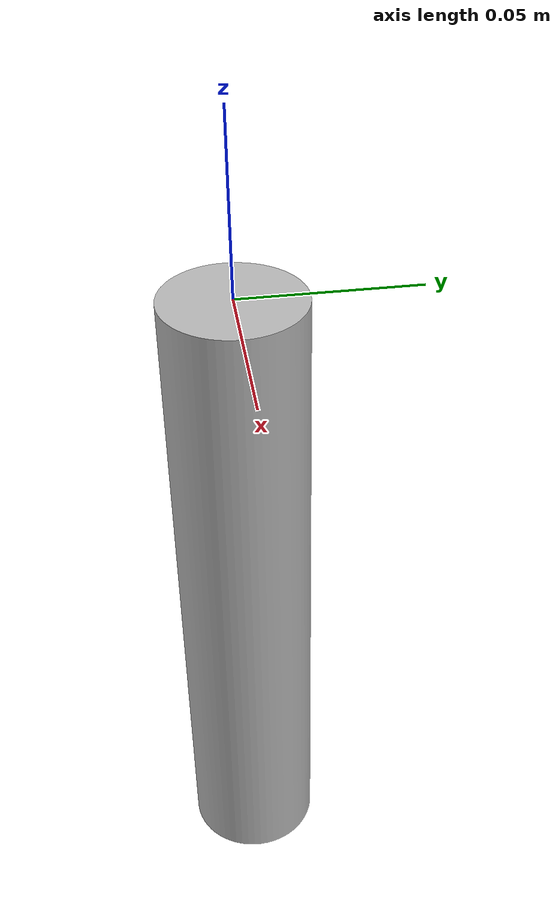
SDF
<sdf version='1.7'>
  <model name='cubic_object'>

    <link name='cylindrical_object_link'>
      <pose>0 0 0 0 -0 0</pose>
      <inertial>
        <pose>1.73472e-18 0 -0.1005 0 0 0</pose>
        <mass>0.0566041</mass>
        <inertia>
          <ixx>0.000196232</ixx>
          <ixy>0</ixy>
          <ixz>6.4154e-21</ixz>
          <iyy>0.000196232</iyy>
          <iyz>0</iyz>
          <izz>1.13208e-05</izz>
        </inertia>
      </inertial>
      <collision name='cylindrical_object_collision'>
        <geometry>
          <mesh>
            <scale>1 1 1</scale>
            <uri>model://cylindrical_object/meshes/cylindrical_object.stl</uri>
          </mesh>
        </geometry>
        <surface>
          <contact>
            <ode>
              <kp>1e15</kp>
              <kd>1e13</kd>
              <max_vel>0.01</max_vel>
              <min_depth>0.00</min_depth>
            </ode>
          </contact>
        </surface>
        <max_contacts>1000</max_contacts>
      </collision>
      <visual name='cylindrical_object_visual'>
        <geometry>
          <mesh>
            <scale>1 1 1</scale>
            <uri>model://cylindrical_object/meshes/cylindrical_object.stl</uri>
          </mesh>
        </geometry>
      </visual>
    </link>
  </model>
</sdf>
